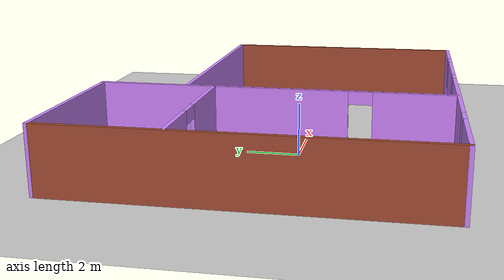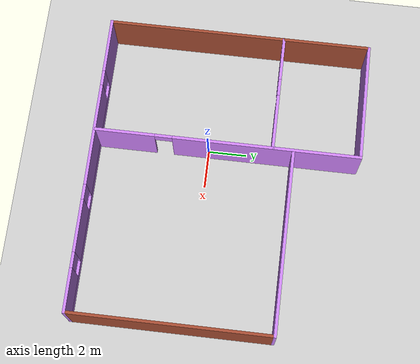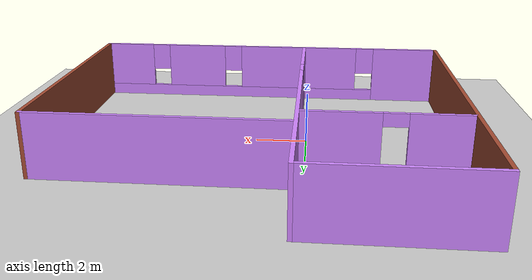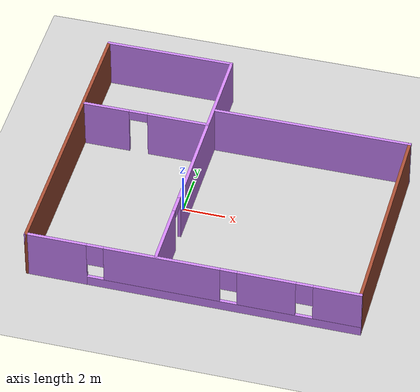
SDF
<sdf version="1.6">
 <world name="default">
  <model name="ground_plane">
   <static>1</static>
   <link name="link">
    <collision name="collision">
     <geometry><plane><normal>0 0 1</normal><size>100 100</size></plane></geometry>
     <surface><friction><ode><mu>100</mu><mu2>50</mu2></ode></friction></surface>
    </collision>
    <visual name="visual">
     <cast_shadows>0</cast_shadows>
     <geometry><plane><normal>0 0 1</normal><size>100 100</size></plane></geometry>
     <material>
      <script><uri>file://media/materials/scripts/gazebo.material</uri><name>Gazebo/Grey</name></script>
     </material>
    </visual>
   </link>
  </model>
  <model name="robothouse">
   <pose>1.97721 1.00212 0 0 -0 0</pose>
   <link name="Wall_1">
    <collision name="Wall_1_Collision">
     <geometry><box><size>13.69 0.15 2.5</size></box></geometry>
     <pose>0 0 1.25 0 -0 0</pose>
    </collision>
    <visual name="Wall_1_Visual">
     <pose>0 0 1.25 0 -0 0</pose>
     <geometry><box><size>13.69 0.15 2.5</size></box></geometry>
     <material>
      <script><uri>file://media/materials/scripts/gazebo.material</uri><name>Gazebo/Bricks</name></script>
      <ambient>1 1 1 1</ambient>
     </material>
     <meta><layer>0</layer></meta>
    </visual>
    <pose>-7.8 -0.065 0 0 -0 1.5708</pose>
   </link>
   <link name="Wall_11">
    <collision name="Wall_11_Collision">
     <geometry><box><size>9.5 0.15 2.5</size></box></geometry>
     <pose>0 0 1.25 0 -0 0</pose>
    </collision>
    <visual name="Wall_11_Visual">
     <pose>0 0 1.25 0 -0 0</pose>
     <geometry><box><size>9.5 0.15 2.5</size></box></geometry>
     <material>
      <script><uri>file://media/materials/scripts/gazebo.material</uri><name>Gazebo/Grey</name></script>
      <ambient>0.803922 0.52549 1 1</ambient>
     </material>
     <meta><layer>0</layer></meta>
    </visual>
    <pose>3.125 3.415 0 0 -0 3.14159</pose>
   </link>
   <link name="Wall_17">
    <collision name="Wall_17_Collision">
     <geometry><box><size>6.25 0.15 2.5</size></box></geometry>
     <pose>0 0 1.25 0 -0 0</pose>
    </collision>
    <visual name="Wall_17_Visual">
     <pose>0 0 1.25 0 -0 0</pose>
     <geometry><box><size>6.25 0.15 2.5</size></box></geometry>
     <material>
      <script><uri>file://media/materials/scripts/gazebo.material</uri><name>Gazebo/Grey</name></script>
      <ambient>0.803922 0.52549 1 1</ambient>
     </material>
     <meta><layer>0</layer></meta>
    </visual>
    <pose>-4.74 6.835 0 0 -0 3.14159</pose>
   </link>
   <link name="Wall_27">
    <pose>-1.69 0.035 0 0 0 -1.5708</pose>
    <visual name="Wall_27_Visual_0">
     <pose>-2.0125 0 1.25 0 -0 0</pose>
     <geometry><box><size>9.725 0.15 2.5</size></box></geometry>
     <material>
      <script><uri>file://media/materials/scripts/gazebo.material</uri><name>Gazebo/Grey</name></script>
      <ambient>0.819608 0.521569 1 1</ambient>
     </material>
     <meta><layer>0</layer></meta>
    </visual>
    <collision name="Wall_27_Collision_0">
     <geometry><box><size>9.725 0.15 2.5</size></box></geometry>
     <pose>-2.0125 0 1.25 0 -0 0</pose>
    </collision>
    <visual name="Wall_27_Visual_1">
     <pose>5.3125 0 1.25 0 -0 0</pose>
     <geometry><box><size>3.125 0.15 2.5</size></box></geometry>
     <material>
      <script><uri>file://media/materials/scripts/gazebo.material</uri><name>Gazebo/Grey</name></script>
      <ambient>0.819608 0.521569 1 1</ambient>
     </material>
     <meta><layer>0</layer></meta>
    </visual>
    <collision name="Wall_27_Collision_1">
     <geometry><box><size>3.125 0.15 2.5</size></box></geometry>
     <pose>5.3125 0 1.25 0 -0 0</pose>
    </collision>
    <visual name="Wall_27_Visual_2">
     <pose>3.3 0 2.25 0 -0 0</pose>
     <geometry><box><size>0.9 0.15 0.5</size></box></geometry>
     <material>
      <script><uri>file://media/materials/scripts/gazebo.material</uri><name>Gazebo/Grey</name></script>
      <ambient>0.819608 0.521569 1 1</ambient>
     </material>
     <meta><layer>0</layer></meta>
    </visual>
    <collision name="Wall_27_Collision_2">
     <geometry><box><size>0.9 0.15 0.5</size></box></geometry>
     <pose>3.3 0 2.25 0 -0 0</pose>
    </collision>
   </link>
   <link name="Wall_29">
    <pose>-4.74 2.355 0 0 -0 0</pose>
    <visual name="Wall_29_Visual_0">
     <pose>-1.9525 0 1.25 0 -0 0</pose>
     <geometry><box><size>2.345 0.15 2.5</size></box></geometry>
     <material>
      <script><uri>file://media/materials/scripts/gazebo.material</uri><name>Gazebo/Grey</name></script>
      <ambient>0.803922 0.52549 1 1</ambient>
     </material>
     <meta><layer>0</layer></meta>
    </visual>
    <collision name="Wall_29_Collision_0">
     <geometry><box><size>2.345 0.15 2.5</size></box></geometry>
     <pose>-1.9525 0 1.25 0 -0 0</pose>
    </collision>
    <visual name="Wall_29_Visual_1">
     <pose>1.6225 0 1.25 0 -0 0</pose>
     <geometry><box><size>3.005 0.15 2.5</size></box></geometry>
     <material>
      <script><uri>file://media/materials/scripts/gazebo.material</uri><name>Gazebo/Grey</name></script>
      <ambient>0.803922 0.52549 1 1</ambient>
     </material>
     <meta><layer>0</layer></meta>
    </visual>
    <collision name="Wall_29_Collision_1">
     <geometry><box><size>3.005 0.15 2.5</size></box></geometry>
     <pose>1.6225 0 1.25 0 -0 0</pose>
    </collision>
    <visual name="Wall_29_Visual_2">
     <pose>-0.33 0 2.25 0 -0 0</pose>
     <geometry><box><size>0.9 0.15 0.5</size></box></geometry>
     <material>
      <script><uri>file://media/materials/scripts/gazebo.material</uri><name>Gazebo/Grey</name></script>
      <ambient>0.803922 0.52549 1 1</ambient>
     </material>
     <meta><layer>0</layer></meta>
    </visual>
    <collision name="Wall_29_Collision_2">
     <geometry><box><size>0.9 0.15 0.5</size></box></geometry>
     <pose>-0.33 0 2.25 0 -0 0</pose>
    </collision>
   </link>
   <link name="Wall_7">
    <pose>0 -6.835 0 0 -0 0</pose>
    <visual name="Wall_7_Visual_0">
     <pose>-6.4075 0 1.25 0 -0 0</pose>
     <geometry><box><size>2.935 0.15 2.5</size></box></geometry>
     <material>
      <script><uri>file://media/materials/scripts/gazebo.material</uri><name>Gazebo/Grey</name></script>
      <ambient>0.803922 0.52549 1 1</ambient>
     </material>
     <meta><layer>0</layer></meta>
    </visual>
    <collision name="Wall_7_Collision_0">
     <geometry><box><size>2.935 0.15 2.5</size></box></geometry>
     <pose>-6.4075 0 1.25 0 -0 0</pose>
    </collision>
    <visual name="Wall_7_Visual_1">
     <pose>1.4675 0 0.25 0 -0 0</pose>
     <geometry><box><size>12.815 0.15 0.5</size></box></geometry>
     <material>
      <script><uri>file://media/materials/scripts/gazebo.material</uri><name>Gazebo/Grey</name></script>
      <ambient>0.803922 0.52549 1 1</ambient>
     </material>
     <meta><layer>0</layer></meta>
    </visual>
    <collision name="Wall_7_Collision_1">
     <geometry><box><size>12.815 0.15 0.5</size></box></geometry>
     <pose>1.4675 0 0.25 0 -0 0</pose>
    </collision>
    <visual name="Wall_7_Visual_2">
     <pose>-1.415 0 1.5 0 -0 0</pose>
     <geometry><box><size>5.45 0.15 2</size></box></geometry>
     <material>
      <script><uri>file://media/materials/scripts/gazebo.material</uri><name>Gazebo/Grey</name></script>
      <ambient>0.803922 0.52549 1 1</ambient>
     </material>
     <meta><layer>0</layer></meta>
    </visual>
    <collision name="Wall_7_Collision_2">
     <geometry><box><size>5.45 0.15 2</size></box></geometry>
     <pose>-1.415 0 1.5 0 -0 0</pose>
    </collision>
    <visual name="Wall_7_Visual_3">
     <pose>3.465 0 1.5 0 -0 0</pose>
     <geometry><box><size>2.71 0.15 2</size></box></geometry>
     <material>
      <script><uri>file://media/materials/scripts/gazebo.material</uri><name>Gazebo/Grey</name></script>
      <ambient>0.803922 0.52549 1 1</ambient>
     </material>
     <meta><layer>0</layer></meta>
    </visual>
    <collision name="Wall_7_Collision_3">
     <geometry><box><size>2.71 0.15 2</size></box></geometry>
     <pose>3.465 0 1.5 0 -0 0</pose>
    </collision>
    <visual name="Wall_7_Visual_4">
     <pose>6.7475 0 1.5 0 -0 0</pose>
     <geometry><box><size>2.255 0.15 2</size></box></geometry>
     <material>
      <script><uri>file://media/materials/scripts/gazebo.material</uri><name>Gazebo/Grey</name></script>
      <ambient>0.803922 0.52549 1 1</ambient>
     </material>
     <meta><layer>0</layer></meta>
    </visual>
    <collision name="Wall_7_Collision_4">
     <geometry><box><size>2.255 0.15 2</size></box></geometry>
     <pose>6.7475 0 1.5 0 -0 0</pose>
    </collision>
    <visual name="Wall_7_Visual_5">
     <pose>-4.54 0 1.9 0 -0 0</pose>
     <geometry><box><size>0.8 0.15 1.2</size></box></geometry>
     <material>
      <script><uri>file://media/materials/scripts/gazebo.material</uri><name>Gazebo/Grey</name></script>
      <ambient>0.803922 0.52549 1 1</ambient>
     </material>
     <meta><layer>0</layer></meta>
    </visual>
    <collision name="Wall_7_Collision_5">
     <geometry><box><size>0.8 0.15 1.2</size></box></geometry>
     <pose>-4.54 0 1.9 0 -0 0</pose>
    </collision>
    <visual name="Wall_7_Visual_6">
     <pose>1.71 0 1.9 0 -0 0</pose>
     <geometry><box><size>0.8 0.15 1.2</size></box></geometry>
     <material>
      <script><uri>file://media/materials/scripts/gazebo.material</uri><name>Gazebo/Grey</name></script>
      <ambient>0.803922 0.52549 1 1</ambient>
     </material>
     <meta><layer>0</layer></meta>
    </visual>
    <collision name="Wall_7_Collision_6">
     <geometry><box><size>0.8 0.15 1.2</size></box></geometry>
     <pose>1.71 0 1.9 0 -0 0</pose>
    </collision>
    <visual name="Wall_7_Visual_7">
     <pose>5.22 0 1.9 0 -0 0</pose>
     <geometry><box><size>0.8 0.15 1.2</size></box></geometry>
     <material>
      <script><uri>file://media/materials/scripts/gazebo.material</uri><name>Gazebo/Grey</name></script>
      <ambient>0.803922 0.52549 1 1</ambient>
     </material>
     <meta><layer>0</layer></meta>
    </visual>
    <collision name="Wall_7_Collision_7">
     <geometry><box><size>0.8 0.15 1.2</size></box></geometry>
     <pose>5.22 0 1.9 0 -0 0</pose>
    </collision>
   </link>
   <link name="Wall_9">
    <collision name="Wall_9_Collision">
     <geometry><box><size>10.25 0.15 2.5</size></box></geometry>
     <pose>0 0 1.25 0 -0 0</pose>
    </collision>
    <visual name="Wall_9_Visual">
     <pose>0 0 1.25 0 -0 0</pose>
     <geometry><box><size>10.25 0.15 2.5</size></box></geometry>
     <material>
      <script><uri>file://media/materials/scripts/gazebo.material</uri><name>Gazebo/Bricks</name></script>
      <ambient>0.819608 0.521569 1 1</ambient>
     </material>
     <meta><layer>0</layer></meta>
    </visual>
    <pose>7.8 -1.635 0 0 -0 1.5708</pose>
   </link>
   <static>1</static>
  </model>
 </world>
</sdf>
